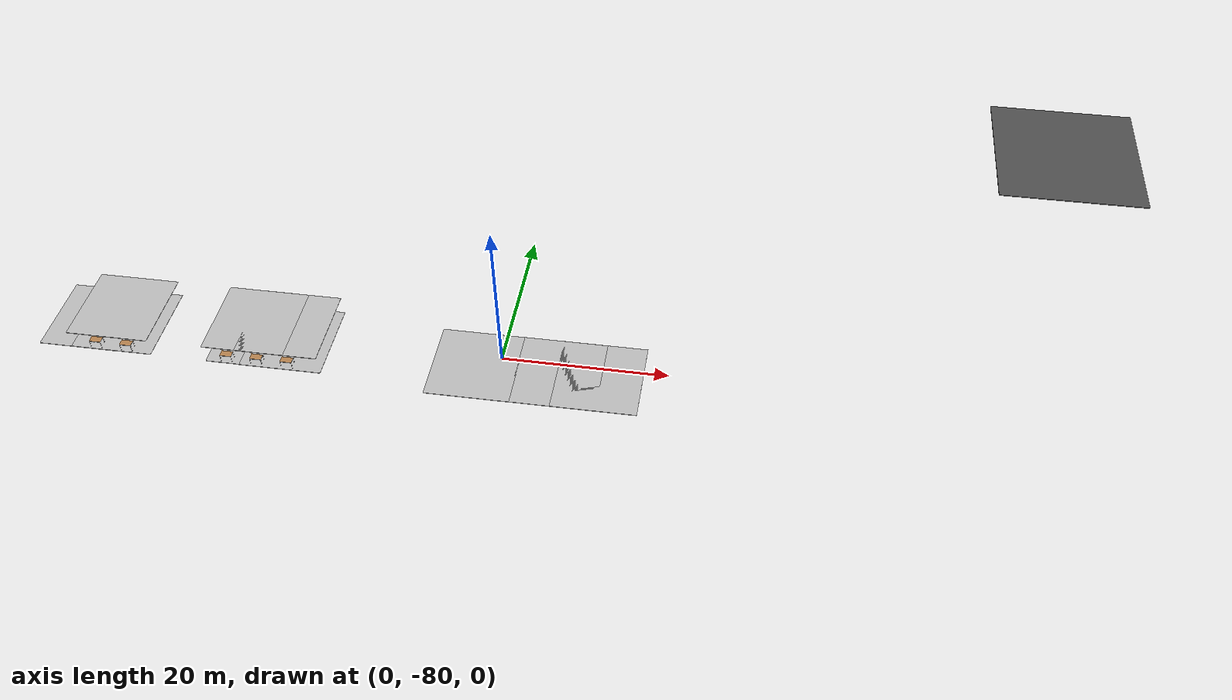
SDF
<sdf version="1.6">
 <world name="default">
  <model name="asphalt_plane">
   <static>1</static>
   <link name="link">
    <collision name="collision"><geometry><box><size>20 20 0.1</size></box></geometry></collision>
    <visual name="visual">
     <cast_shadows>0</cast_shadows>
     <geometry><box><size>20 20 0.1</size></box></geometry>
     <material>
      <script>
       <uri>model://asphalt_plane/materials/scripts</uri>
       <uri>model://asphalt_plane/materials/textures</uri>
       <name>vrc/asphalt</name>
      </script>
     </material>
    </visual>
   </link>
   <pose>70.7475 -31.5972 0 0 -0 0</pose>
  </model>
  <model name="table_4">
   <static>0</static>
   <link name="link">
    <collision name="surface">
     <pose>0 0 1 0 -0 0</pose>
     <geometry><box><size>1.5 0.8 0.03</size></box></geometry>
     <surface><friction><ode><mu>0.6</mu><mu2>0.6</mu2></ode></friction></surface>
    </collision>
    <visual name="visual1">
     <pose>0 0 1 0 -0 0</pose>
     <geometry><box><size>1.4 0.8 0.04</size></box></geometry>
     <material>
      <script><uri>file://media/materials/scripts/gazebo.material</uri><name>Gazebo/Wood</name></script>
     </material>
    </visual>
    <collision name="front_left_leg">
     <pose>0.68 0.38 0.5 0 -0 0</pose>
     <geometry><cylinder><radius>0.02</radius><length>1</length></cylinder></geometry>
    </collision>
    <visual name="front_left_leg">
     <pose>0.68 0.38 0.5 0 -0 0</pose>
     <geometry><cylinder><radius>0.02</radius><length>1</length></cylinder></geometry>
     <material>
      <script>
       <uri>model://office_env/materials/scripts</uri>
       <uri>model://office_env/materials/textures</uri>
       <name>wall</name>
      </script>
     </material>
    </visual>
    <collision name="front_right_leg">
     <pose>0.68 -0.38 0.5 0 -0 0</pose>
     <geometry><cylinder><radius>0.02</radius><length>1</length></cylinder></geometry>
    </collision>
    <visual name="front_right_leg">
     <pose>0.68 -0.38 0.5 0 -0 0</pose>
     <geometry><cylinder><radius>0.02</radius><length>1</length></cylinder></geometry>
     <material>
      <script>
       <uri>model://office_env/materials/scripts</uri>
       <uri>model://office_env/materials/textures</uri>
       <name>wall</name>
      </script>
     </material>
    </visual>
    <collision name="back_right_leg">
     <pose>-0.68 -0.38 0.5 0 -0 0</pose>
     <geometry><cylinder><radius>0.02</radius><length>1</length></cylinder></geometry>
    </collision>
    <visual name="back_right_leg">
     <pose>-0.68 -0.38 0.5 0 -0 0</pose>
     <geometry><cylinder><radius>0.02</radius><length>1</length></cylinder></geometry>
     <material>
      <script>
       <uri>model://office_env/materials/scripts</uri>
       <uri>model://office_env/materials/textures</uri>
       <name>wall</name>
      </script>
     </material>
    </visual>
    <collision name="back_left_leg">
     <pose>-0.68 0.38 0.5 0 -0 0</pose>
     <geometry><cylinder><radius>0.02</radius><length>1</length></cylinder></geometry>
    </collision>
    <visual name="back_left_leg">
     <pose>-0.68 0.38 0.5 0 -0 0</pose>
     <geometry><cylinder><radius>0.02</radius><length>1</length></cylinder></geometry>
     <material>
      <script>
       <uri>model://office_env/materials/scripts</uri>
       <uri>model://office_env/materials/textures</uri>
       <name>wall</name>
      </script>
     </material>
    </visual>
    <inertial>
     <inertia><ixx>1</ixx><ixy>0</ixy><ixz>0</ixz><iyy>1</iyy><iyz>0</iyz><izz>1</izz></inertia>
     <mass>1</mass>
    </inertial>
   </link>
   <pose>-32.5002 -84.6276 0.034993 -3e-06 3e-06 0</pose>
  </model>
  <model name="table_5">
   <static>0</static>
   <link name="link">
    <collision name="surface">
     <pose>0 0 1 0 -0 0</pose>
     <geometry><box><size>1.5 0.8 0.03</size></box></geometry>
     <surface><friction><ode><mu>0.6</mu><mu2>0.6</mu2></ode></friction></surface>
    </collision>
    <visual name="visual1">
     <pose>0 0 1 0 -0 0</pose>
     <geometry><box><size>1.4 0.8 0.04</size></box></geometry>
     <material>
      <script><uri>file://media/materials/scripts/gazebo.material</uri><name>Gazebo/Wood</name></script>
     </material>
    </visual>
    <collision name="front_left_leg">
     <pose>0.68 0.38 0.5 0 -0 0</pose>
     <geometry><cylinder><radius>0.02</radius><length>1</length></cylinder></geometry>
    </collision>
    <visual name="front_left_leg">
     <pose>0.68 0.38 0.5 0 -0 0</pose>
     <geometry><cylinder><radius>0.02</radius><length>1</length></cylinder></geometry>
     <material>
      <script>
       <uri>model://office_env/materials/scripts</uri>
       <uri>model://office_env/materials/textures</uri>
       <name>wall</name>
      </script>
     </material>
    </visual>
    <collision name="front_right_leg">
     <pose>0.68 -0.38 0.5 0 -0 0</pose>
     <geometry><cylinder><radius>0.02</radius><length>1</length></cylinder></geometry>
    </collision>
    <visual name="front_right_leg">
     <pose>0.68 -0.38 0.5 0 -0 0</pose>
     <geometry><cylinder><radius>0.02</radius><length>1</length></cylinder></geometry>
     <material>
      <script>
       <uri>model://office_env/materials/scripts</uri>
       <uri>model://office_env/materials/textures</uri>
       <name>wall</name>
      </script>
     </material>
    </visual>
    <collision name="back_right_leg">
     <pose>-0.68 -0.38 0.5 0 -0 0</pose>
     <geometry><cylinder><radius>0.02</radius><length>1</length></cylinder></geometry>
    </collision>
    <visual name="back_right_leg">
     <pose>-0.68 -0.38 0.5 0 -0 0</pose>
     <geometry><cylinder><radius>0.02</radius><length>1</length></cylinder></geometry>
     <material>
      <script>
       <uri>model://office_env/materials/scripts</uri>
       <uri>model://office_env/materials/textures</uri>
       <name>wall</name>
      </script>
     </material>
    </visual>
    <collision name="back_left_leg">
     <pose>-0.68 0.38 0.5 0 -0 0</pose>
     <geometry><cylinder><radius>0.02</radius><length>1</length></cylinder></geometry>
    </collision>
    <visual name="back_left_leg">
     <pose>-0.68 0.38 0.5 0 -0 0</pose>
     <geometry><cylinder><radius>0.02</radius><length>1</length></cylinder></geometry>
     <material>
      <script>
       <uri>model://office_env/materials/scripts</uri>
       <uri>model://office_env/materials/textures</uri>
       <name>wall</name>
      </script>
     </material>
    </visual>
    <inertial>
     <inertia><ixx>1</ixx><ixy>0</ixy><ixz>0</ixz><iyy>1</iyy><iyz>0</iyz><izz>1</izz></inertia>
     <mass>1</mass>
    </inertial>
   </link>
   <pose>-28.8169 -84.6215 0.034992 0 -0 0</pose>
  </model>
  <model name="table_6">
   <static>0</static>
   <link name="link">
    <collision name="surface">
     <pose>0 0 1 0 -0 0</pose>
     <geometry><box><size>1.5 0.8 0.03</size></box></geometry>
     <surface><friction><ode><mu>0.6</mu><mu2>0.6</mu2></ode></friction></surface>
    </collision>
    <visual name="visual1">
     <pose>0 0 1 0 -0 0</pose>
     <geometry><box><size>1.4 0.8 0.04</size></box></geometry>
     <material>
      <script><uri>file://media/materials/scripts/gazebo.material</uri><name>Gazebo/Wood</name></script>
     </material>
    </visual>
    <collision name="front_left_leg">
     <pose>0.68 0.38 0.5 0 -0 0</pose>
     <geometry><cylinder><radius>0.02</radius><length>1</length></cylinder></geometry>
    </collision>
    <visual name="front_left_leg">
     <pose>0.68 0.38 0.5 0 -0 0</pose>
     <geometry><cylinder><radius>0.02</radius><length>1</length></cylinder></geometry>
     <material>
      <script>
       <uri>model://office_env/materials/scripts</uri>
       <uri>model://office_env/materials/textures</uri>
       <name>wall</name>
      </script>
     </material>
    </visual>
    <collision name="front_right_leg">
     <pose>0.68 -0.38 0.5 0 -0 0</pose>
     <geometry><cylinder><radius>0.02</radius><length>1</length></cylinder></geometry>
    </collision>
    <visual name="front_right_leg">
     <pose>0.68 -0.38 0.5 0 -0 0</pose>
     <geometry><cylinder><radius>0.02</radius><length>1</length></cylinder></geometry>
     <material>
      <script>
       <uri>model://office_env/materials/scripts</uri>
       <uri>model://office_env/materials/textures</uri>
       <name>wall</name>
      </script>
     </material>
    </visual>
    <collision name="back_right_leg">
     <pose>-0.68 -0.38 0.5 0 -0 0</pose>
     <geometry><cylinder><radius>0.02</radius><length>1</length></cylinder></geometry>
    </collision>
    <visual name="back_right_leg">
     <pose>-0.68 -0.38 0.5 0 -0 0</pose>
     <geometry><cylinder><radius>0.02</radius><length>1</length></cylinder></geometry>
     <material>
      <script>
       <uri>model://office_env/materials/scripts</uri>
       <uri>model://office_env/materials/textures</uri>
       <name>wall</name>
      </script>
     </material>
    </visual>
    <collision name="back_left_leg">
     <pose>-0.68 0.38 0.5 0 -0 0</pose>
     <geometry><cylinder><radius>0.02</radius><length>1</length></cylinder></geometry>
    </collision>
    <visual name="back_left_leg">
     <pose>-0.68 0.38 0.5 0 -0 0</pose>
     <geometry><cylinder><radius>0.02</radius><length>1</length></cylinder></geometry>
     <material>
      <script>
       <uri>model://office_env/materials/scripts</uri>
       <uri>model://office_env/materials/textures</uri>
       <name>wall</name>
      </script>
     </material>
    </visual>
    <inertial>
     <inertia><ixx>1</ixx><ixy>0</ixy><ixz>0</ixz><iyy>1</iyy><iyz>0</iyz><izz>1</izz></inertia>
     <mass>1</mass>
    </inertial>
   </link>
   <pose>-25.0742 -84.5962 0.034992 1e-06 -2e-06 4e-06</pose>
  </model>
  <model name="table_8">
   <static>0</static>
   <link name="link">
    <collision name="surface">
     <pose>0 0 1 0 -0 0</pose>
     <geometry><box><size>1.5 0.8 0.03</size></box></geometry>
     <surface><friction><ode><mu>0.6</mu><mu2>0.6</mu2></ode></friction></surface>
    </collision>
    <visual name="visual1">
     <pose>0 0 1 0 -0 0</pose>
     <geometry><box><size>1.4 0.8 0.04</size></box></geometry>
     <material>
      <script><uri>file://media/materials/scripts/gazebo.material</uri><name>Gazebo/Wood</name></script>
     </material>
    </visual>
    <collision name="front_left_leg">
     <pose>0.68 0.38 0.5 0 -0 0</pose>
     <geometry><cylinder><radius>0.02</radius><length>1</length></cylinder></geometry>
    </collision>
    <visual name="front_left_leg">
     <pose>0.68 0.38 0.5 0 -0 0</pose>
     <geometry><cylinder><radius>0.02</radius><length>1</length></cylinder></geometry>
     <material>
      <script>
       <uri>model://office_env/materials/scripts</uri>
       <uri>model://office_env/materials/textures</uri>
       <name>wall</name>
      </script>
     </material>
    </visual>
    <collision name="front_right_leg">
     <pose>0.68 -0.38 0.5 0 -0 0</pose>
     <geometry><cylinder><radius>0.02</radius><length>1</length></cylinder></geometry>
    </collision>
    <visual name="front_right_leg">
     <pose>0.68 -0.38 0.5 0 -0 0</pose>
     <geometry><cylinder><radius>0.02</radius><length>1</length></cylinder></geometry>
     <material>
      <script>
       <uri>model://office_env/materials/scripts</uri>
       <uri>model://office_env/materials/textures</uri>
       <name>wall</name>
      </script>
     </material>
    </visual>
    <collision name="back_right_leg">
     <pose>-0.68 -0.38 0.5 0 -0 0</pose>
     <geometry><cylinder><radius>0.02</radius><length>1</length></cylinder></geometry>
    </collision>
    <visual name="back_right_leg">
     <pose>-0.68 -0.38 0.5 0 -0 0</pose>
     <geometry><cylinder><radius>0.02</radius><length>1</length></cylinder></geometry>
     <material>
      <script>
       <uri>model://office_env/materials/scripts</uri>
       <uri>model://office_env/materials/textures</uri>
       <name>wall</name>
      </script>
     </material>
    </visual>
    <collision name="back_left_leg">
     <pose>-0.68 0.38 0.5 0 -0 0</pose>
     <geometry><cylinder><radius>0.02</radius><length>1</length></cylinder></geometry>
    </collision>
    <visual name="back_left_leg">
     <pose>-0.68 0.38 0.5 0 -0 0</pose>
     <geometry><cylinder><radius>0.02</radius><length>1</length></cylinder></geometry>
     <material>
      <script>
       <uri>model://office_env/materials/scripts</uri>
       <uri>model://office_env/materials/textures</uri>
       <name>wall</name>
      </script>
     </material>
    </visual>
    <inertial>
     <inertia><ixx>1</ixx><ixy>0</ixy><ixz>0</ixz><iyy>1</iyy><iyz>0</iyz><izz>1</izz></inertia>
     <mass>1</mass>
    </inertial>
   </link>
   <pose>-48.8849 -84.5469 0.034991 0 -0 0</pose>
  </model>
  <model name="table_9">
   <static>0</static>
   <link name="link">
    <collision name="surface">
     <pose>0 0 1 0 -0 0</pose>
     <geometry><box><size>1.5 0.8 0.03</size></box></geometry>
     <surface><friction><ode><mu>0.6</mu><mu2>0.6</mu2></ode></friction></surface>
    </collision>
    <visual name="visual1">
     <pose>0 0 1 0 -0 0</pose>
     <geometry><box><size>1.4 0.8 0.04</size></box></geometry>
     <material>
      <script><uri>file://media/materials/scripts/gazebo.material</uri><name>Gazebo/Wood</name></script>
     </material>
    </visual>
    <collision name="front_left_leg">
     <pose>0.68 0.38 0.5 0 -0 0</pose>
     <geometry><cylinder><radius>0.02</radius><length>1</length></cylinder></geometry>
    </collision>
    <visual name="front_left_leg">
     <pose>0.68 0.38 0.5 0 -0 0</pose>
     <geometry><cylinder><radius>0.02</radius><length>1</length></cylinder></geometry>
     <material>
      <script>
       <uri>model://office_env/materials/scripts</uri>
       <uri>model://office_env/materials/textures</uri>
       <name>wall</name>
      </script>
     </material>
    </visual>
    <collision name="front_right_leg">
     <pose>0.68 -0.38 0.5 0 -0 0</pose>
     <geometry><cylinder><radius>0.02</radius><length>1</length></cylinder></geometry>
    </collision>
    <visual name="front_right_leg">
     <pose>0.68 -0.38 0.5 0 -0 0</pose>
     <geometry><cylinder><radius>0.02</radius><length>1</length></cylinder></geometry>
     <material>
      <script>
       <uri>model://office_env/materials/scripts</uri>
       <uri>model://office_env/materials/textures</uri>
       <name>wall</name>
      </script>
     </material>
    </visual>
    <collision name="back_right_leg">
     <pose>-0.68 -0.38 0.5 0 -0 0</pose>
     <geometry><cylinder><radius>0.02</radius><length>1</length></cylinder></geometry>
    </collision>
    <visual name="back_right_leg">
     <pose>-0.68 -0.38 0.5 0 -0 0</pose>
     <geometry><cylinder><radius>0.02</radius><length>1</length></cylinder></geometry>
     <material>
      <script>
       <uri>model://office_env/materials/scripts</uri>
       <uri>model://office_env/materials/textures</uri>
       <name>wall</name>
      </script>
     </material>
    </visual>
    <collision name="back_left_leg">
     <pose>-0.68 0.38 0.5 0 -0 0</pose>
     <geometry><cylinder><radius>0.02</radius><length>1</length></cylinder></geometry>
    </collision>
    <visual name="back_left_leg">
     <pose>-0.68 0.38 0.5 0 -0 0</pose>
     <geometry><cylinder><radius>0.02</radius><length>1</length></cylinder></geometry>
     <material>
      <script>
       <uri>model://office_env/materials/scripts</uri>
       <uri>model://office_env/materials/textures</uri>
       <name>wall</name>
      </script>
     </material>
    </visual>
    <inertial>
     <inertia><ixx>1</ixx><ixy>0</ixy><ixz>0</ixz><iyy>1</iyy><iyz>0</iyz><izz>1</izz></inertia>
     <mass>1</mass>
    </inertial>
   </link>
   <pose>-45.0488 -84.6021 0.034997 2e-06 -3e-06 0</pose>
  </model>
  <model name="Floor_15">
   <link name="main">
    <pose>0 0 0.01 0 -0 0</pose>
    <collision name="main_Collision"><geometry><box><size>10 10 0.05</size></box></geometry></collision>
    <visual name="main_Visual">
     <geometry><box><size>10 10 0.05</size></box></geometry>
     <material>
      <script>
       <uri>model://Floor_small/materials/scripts</uri>
       <uri>model://Floor_small/materials/textures</uri>
       <name>floor</name>
      </script>
     </material>
    </visual>
   </link>
   <static>1</static>
   <pose>-25.9365 -80.2194 0 0 -0 0</pose>
  </model>
  <model name="Floor_17">
   <link name="main">
    <pose>0 0 0.01 0 -0 0</pose>
    <collision name="main_Collision"><geometry><box><size>10 10 0.05</size></box></geometry></collision>
    <visual name="main_Visual">
     <geometry><box><size>10 10 0.05</size></box></geometry>
     <material>
      <script>
       <uri>model://Floor_small/materials/scripts</uri>
       <uri>model://Floor_small/materials/textures</uri>
       <name>floor</name>
      </script>
     </material>
    </visual>
   </link>
   <static>1</static>
   <pose>-30.0626 -80.1866 0 0 -0 0</pose>
  </model>
  <model name="Floor_19">
   <link name="main">
    <pose>0 0 0.01 0 -0 0</pose>
    <collision name="main_Collision"><geometry><box><size>10 10 0.05</size></box></geometry></collision>
    <visual name="main_Visual">
     <geometry><box><size>10 10 0.05</size></box></geometry>
     <material>
      <script>
       <uri>model://Floor_small/materials/scripts</uri>
       <uri>model://Floor_small/materials/textures</uri>
       <name>floor</name>
      </script>
     </material>
    </visual>
   </link>
   <static>1</static>
   <pose>-47.0146 -80.1187 0 0 -0 0</pose>
  </model>
  <model name="Floor_21">
   <link name="main">
    <pose>0 0 0.01 0 -0 0</pose>
    <collision name="main_Collision"><geometry><box><size>10 10 0.05</size></box></geometry></collision>
    <visual name="main_Visual">
     <geometry><box><size>10 10 0.05</size></box></geometry>
     <material>
      <script>
       <uri>model://Floor_small/materials/scripts</uri>
       <uri>model://Floor_small/materials/textures</uri>
       <name>floor</name>
      </script>
     </material>
    </visual>
   </link>
   <static>1</static>
   <pose>-51.0322 -80.1481 0 0 -0 0</pose>
  </model>
  <model name="Floor_3_clone_2">
   <link name="main">
    <pose>0 0 0.01 0 -0 0</pose>
    <collision name="main_Collision"><geometry><box><size>10 10 0.05</size></box></geometry></collision>
    <visual name="main_Visual">
     <geometry><box><size>10 10 0.05</size></box></geometry>
     <material>
      <script>
       <uri>model://Floor_small/materials/scripts</uri>
       <uri>model://Floor_small/materials/textures</uri>
       <name>floor</name>
      </script>
     </material>
    </visual>
   </link>
   <static>1</static>
   <pose>-46.9106 -80.239 2.5 0 -0 0</pose>
  </model>
  <model name="Floor_3_clone_6">
   <link name="main">
    <pose>0 0 0.01 0 -0 0</pose>
    <collision name="main_Collision"><geometry><box><size>10 10 0.05</size></box></geometry></collision>
    <visual name="main_Visual">
     <geometry><box><size>10 10 0.05</size></box></geometry>
     <material>
      <script>
       <uri>model://Floor_small/materials/scripts</uri>
       <uri>model://Floor_small/materials/textures</uri>
       <name>floor</name>
      </script>
     </material>
    </visual>
   </link>
   <static>1</static>
   <pose>-30.1109 -80.2344 2.5 0 -0 0</pose>
  </model>
  <model name="Floor_3_clone_8">
   <link name="main">
    <pose>0 0 0.01 0 -0 0</pose>
    <collision name="main_Collision"><geometry><box><size>10 10 0.05</size></box></geometry></collision>
    <visual name="main_Visual">
     <geometry><box><size>10 10 0.05</size></box></geometry>
     <material>
      <script>
       <uri>model://Floor_small/materials/scripts</uri>
       <uri>model://Floor_small/materials/textures</uri>
       <name>floor</name>
      </script>
     </material>
    </visual>
   </link>
   <static>1</static>
   <pose>-26.0662 -80.2248 2.5 0 -0 0</pose>
  </model>
  <model name="Floor_3_clone_11">
   <link name="main">
    <pose>0 0 0.01 0 -0 0</pose>
    <collision name="main_Collision"><geometry><box><size>10 10 0.05</size></box></geometry></collision>
    <visual name="main_Visual">
     <geometry><box><size>10 10 0.05</size></box></geometry>
     <material>
      <script>
       <uri>model://Floor_small/materials/scripts</uri>
       <uri>model://Floor_small/materials/textures</uri>
       <name>floor</name>
      </script>
     </material>
    </visual>
   </link>
   <static>1</static>
   <pose>-2.32398 -83.5163 2.5 0 -0 0</pose>
  </model>
  <model name="Floor_3_clone_12">
   <link name="main">
    <pose>0 0 0.01 0 -0 0</pose>
    <collision name="main_Collision"><geometry><box><size>10 10 0.05</size></box></geometry></collision>
    <visual name="main_Visual">
     <geometry><box><size>10 10 0.05</size></box></geometry>
     <material>
      <script>
       <uri>model://Floor_small/materials/scripts</uri>
       <uri>model://Floor_small/materials/textures</uri>
       <name>floor</name>
      </script>
     </material>
    </visual>
   </link>
   <static>1</static>
   <pose>7.57189 -83.4994 2.5 0 -0 0</pose>
  </model>
  <model name="Floor_3_clone_14">
   <link name="main">
    <pose>0 0 0.01 0 -0 0</pose>
    <collision name="main_Collision"><geometry><box><size>10 10 0.05</size></box></geometry></collision>
    <visual name="main_Visual">
     <geometry><box><size>10 10 0.05</size></box></geometry>
     <material>
      <script>
       <uri>model://Floor_small/materials/scripts</uri>
       <uri>model://Floor_small/materials/textures</uri>
       <name>floor</name>
      </script>
     </material>
    </visual>
   </link>
   <static>1</static>
   <pose>12.3419 -83.4877 2.5 0 -0 0</pose>
  </model>
 </world>
</sdf>
